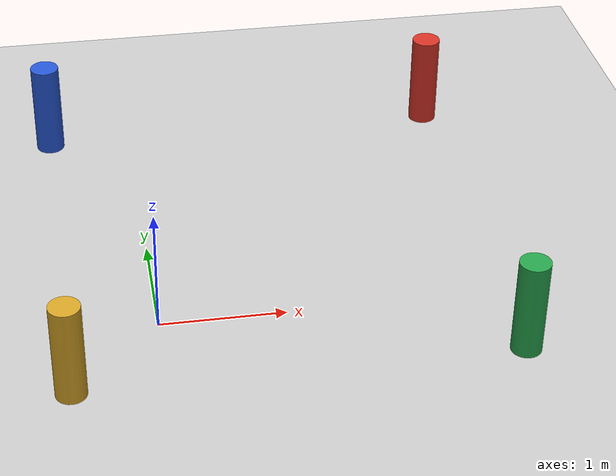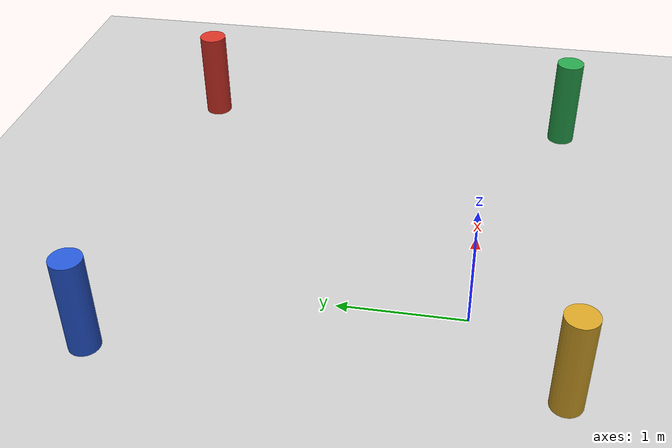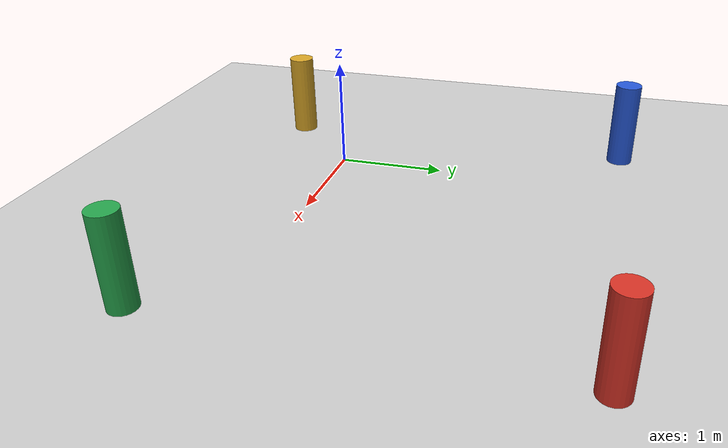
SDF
<sdf version="1.8">
 <world name="sensor_course">
  <gravity>0 0 -9.8</gravity>
  <physics type="ode">
   <max_step_size>0.001</max_step_size>
   <real_time_factor>1.0</real_time_factor>
   <real_time_update_rate>1000.0</real_time_update_rate>
   <ode>
    <solver>
     <type>quick</type>
     <iters>150</iters>
     <precon_iters>0</precon_iters>
     <sor>1.4</sor>
     <use_dynamic_moi_rescaling>1</use_dynamic_moi_rescaling>
    </solver>
    <constraints>
     <cfm>0.00001</cfm>
     <erp>0.2</erp>
     <contact_max_correcting_vel>2000.0</contact_max_correcting_vel>
     <contact_surface_layer>0.01</contact_surface_layer>
    </constraints>
   </ode>
  </physics>
  <plugin filename="gz-sim-physics-system" name="gz::sim::systems::Physics"/>
  <plugin filename="gz-sim-user-commands-system" name="gz::sim::systems::UserCommands"/>
  <plugin filename="gz-sim-scene-broadcaster-system" name="gz::sim::systems::SceneBroadcaster"/>
  <plugin filename="gz-sim-sensors-system" name="gz::sim::systems::Sensors">
   <render_engine>ogre2</render_engine>
  </plugin>
  <plugin filename="gz-sim-imu-system" name="gz::sim::systems::Imu"/>
  <scene><ambient>0.4 0.4 0.4 1</ambient><background>0.7 0.7 0.7 1</background><shadows>true</shadows></scene>
  <light type="directional" name="sun">
   <pose>0 0 10 0 0 0</pose>
   <diffuse>0.8 0.8 0.8 1</diffuse>
   <specular>0.2 0.2 0.2 1</specular>
   <direction>-0.5 0.1 -0.9</direction>
  </light>
  <model name="ground_plane">
   <static>true</static>
   <link name="link">
    <collision name="collision">
     <geometry><plane><normal>0 0 1</normal><size>100 100</size></plane></geometry>
    </collision>
    <visual name="visual">
     <geometry><plane><normal>0 0 1</normal><size>100 100</size></plane></geometry>
     <material><ambient>0.8 0.8 0.8 1</ambient><diffuse>0.8 0.8 0.8 1</diffuse></material>
    </visual>
   </link>
  </model>
  <model name="pole_ne">
   <static>true</static>
   <pose>2.7 2.7 0.4 0 0 0</pose>
   <link name="link">
    <collision name="collision">
     <geometry><cylinder><radius>0.12</radius><length>0.8</length></cylinder></geometry>
    </collision>
    <visual name="visual">
     <geometry><cylinder><radius>0.12</radius><length>0.8</length></cylinder></geometry>
     <material><ambient>0.85 0.2 0.15 1</ambient><diffuse>0.85 0.2 0.15 1</diffuse></material>
    </visual>
   </link>
  </model>
  <model name="pole_nw">
   <static>true</static>
   <pose>-0.7 2.7 0.4 0 0 0</pose>
   <link name="link">
    <collision name="collision">
     <geometry><cylinder><radius>0.12</radius><length>0.8</length></cylinder></geometry>
    </collision>
    <visual name="visual">
     <geometry><cylinder><radius>0.12</radius><length>0.8</length></cylinder></geometry>
     <material><ambient>0.15 0.35 0.85 1</ambient><diffuse>0.15 0.35 0.85 1</diffuse></material>
    </visual>
   </link>
  </model>
  <model name="pole_se">
   <static>true</static>
   <pose>2.7 -0.7 0.4 0 0 0</pose>
   <link name="link">
    <collision name="collision">
     <geometry><cylinder><radius>0.12</radius><length>0.8</length></cylinder></geometry>
    </collision>
    <visual name="visual">
     <geometry><cylinder><radius>0.12</radius><length>0.8</length></cylinder></geometry>
     <material><ambient>0.15 0.65 0.3 1</ambient><diffuse>0.15 0.65 0.3 1</diffuse></material>
    </visual>
   </link>
  </model>
  <model name="pole_sw">
   <static>true</static>
   <pose>-0.7 -0.7 0.4 0 0 0</pose>
   <link name="link">
    <collision name="collision">
     <geometry><cylinder><radius>0.12</radius><length>0.8</length></cylinder></geometry>
    </collision>
    <visual name="visual">
     <geometry><cylinder><radius>0.12</radius><length>0.8</length></cylinder></geometry>
     <material><ambient>0.85 0.65 0.15 1</ambient><diffuse>0.85 0.65 0.15 1</diffuse></material>
    </visual>
   </link>
  </model>
 </world>
</sdf>
